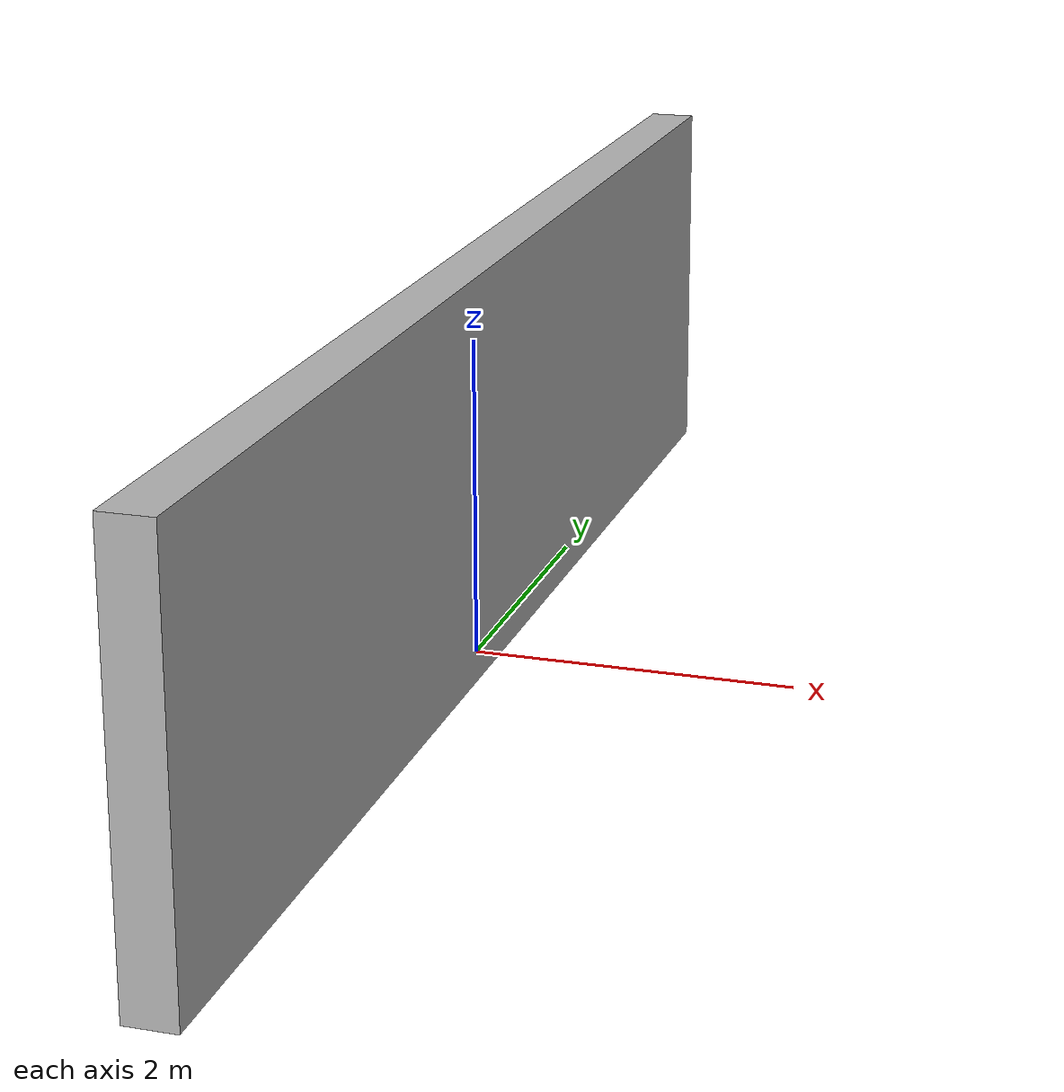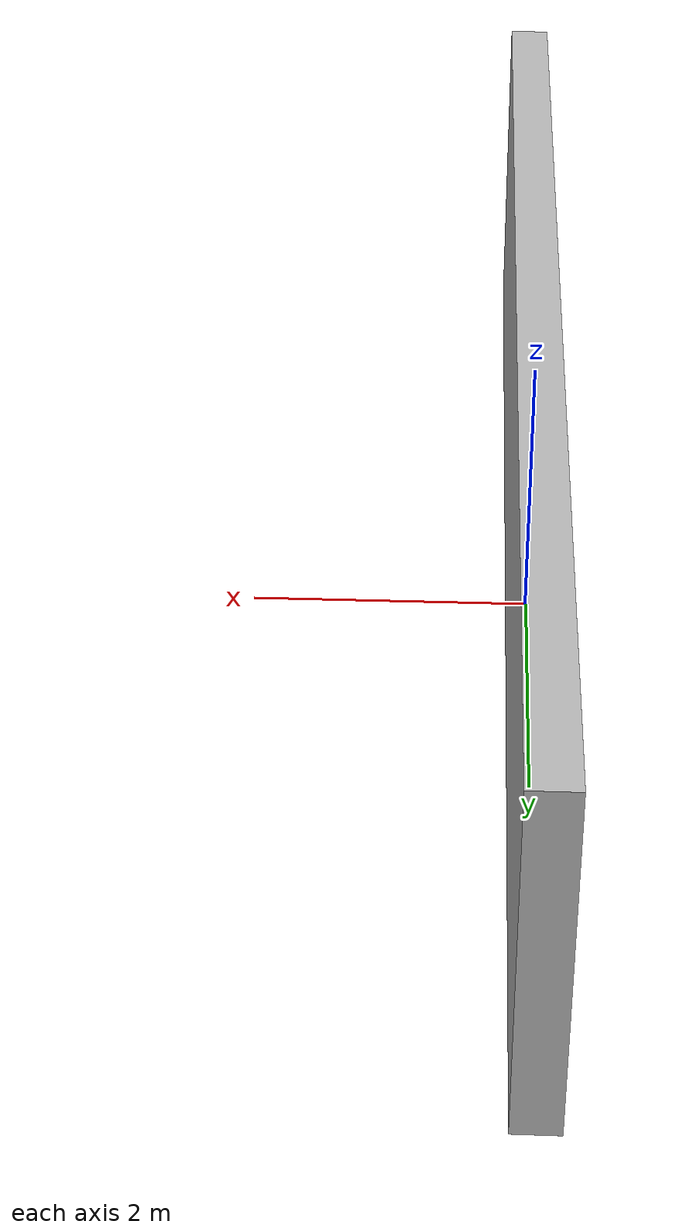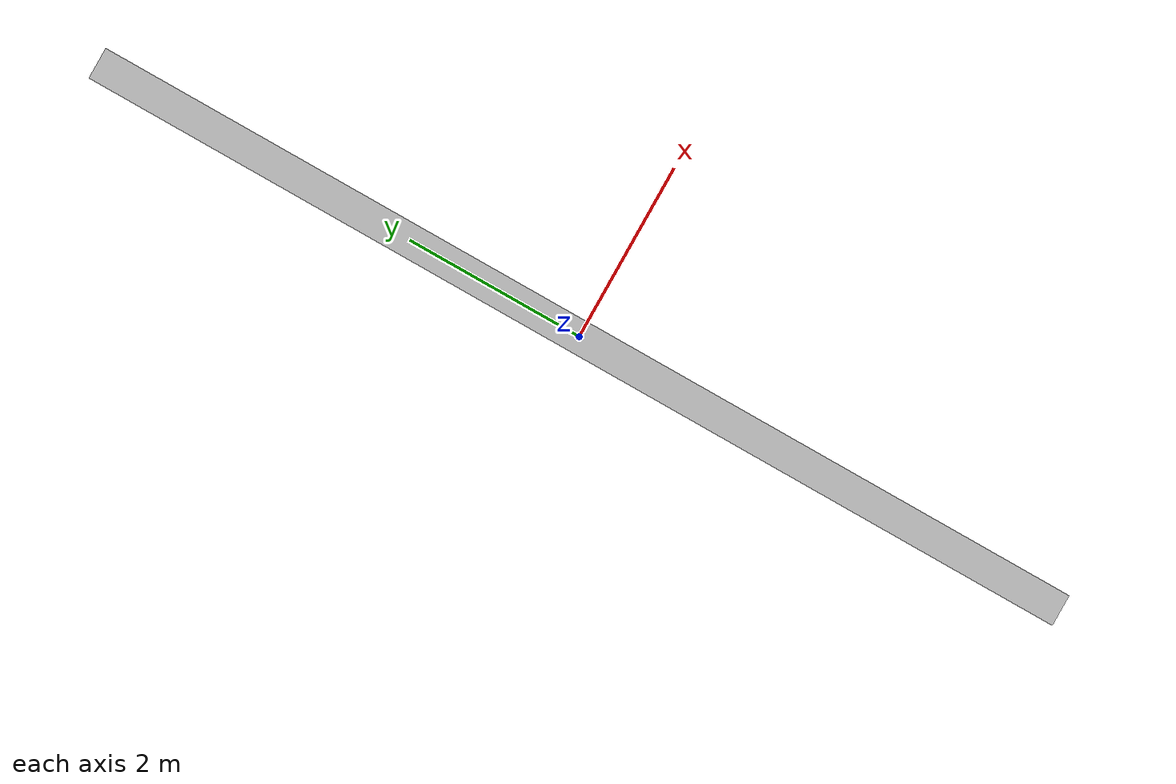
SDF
<?xml version="1.0" ?>
<sdf version="1.5">
  <model name="corridor_wall7">
    <static>true</static>
    <link name="link">
      <pose>0 0 1.25 0 0 1.5708</pose>
      <collision name="collision">
        <geometry>
          <box>
            <size>9.7 0.3 2.5</size>
          </box>
        </geometry>
      </collision>
      <visual name="visual">
        <cast_shadows>false</cast_shadows>
        <geometry>
          <box>
            <size>9.7 0.3 2.5</size>
          </box>
        </geometry>
        <material>
          <script>
            <uri>model://corridor_wall7/materials/scripts</uri>
            <uri>model://corridor_wall7/materials/textures</uri>
            <name>vrc/corridor_wall7</name>
          </script>
        </material>
      </visual>
    </link>
  </model>
</sdf>
